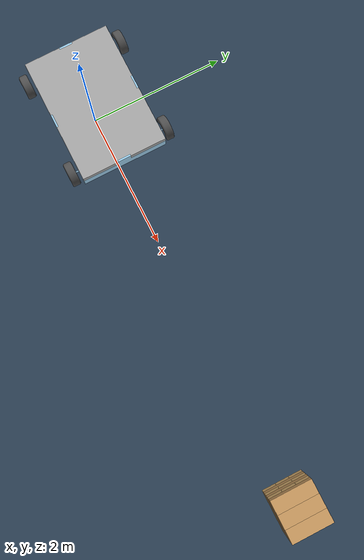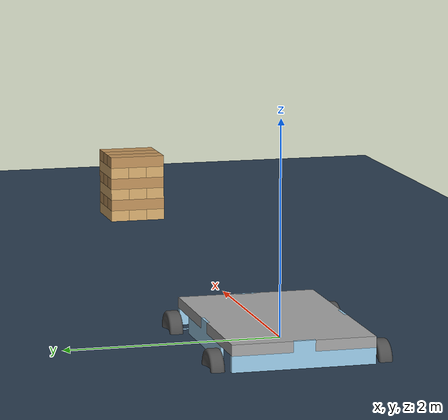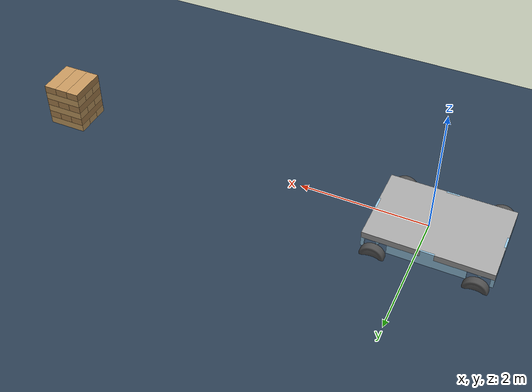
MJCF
<mujoco model="train_scene_nav">
  <include file="robot.xml"/>
  <visual>
    <global offwidth="1280" offheight="720"/>
    <headlight diffuse="0.6 0.6 0.6" ambient="0.3 0.3 0.3"/>
  </visual>
  <asset>
    <texture name="grid" type="2d" builtin="checker" rgb1="0.2 0.3 0.4" rgb2="0.12 0.17 0.23"
             width="512" height="512"/>
    <material name="grid" texture="grid" texrepeat="12 12" reflectance="0.1"/>
    <material name="wall_mat" rgba="0.35 0.38 0.45 1"/>
    <material name="obs_mat" rgba="0.75 0.45 0.2 1"/>
    <material name="wood_a" rgba="0.86 0.69 0.44 1"/>
    <material name="wood_b" rgba="0.76 0.58 0.36 1"/>
  </asset>

  <worldbody>
    <light pos="0 0 10" dir="0 0 -1" diffuse="0.8 0.8 0.8"/>
    <geom name="floor" type="plane" size="60 60 0.1" material="grid"/>

    <!-- ===== 4 STATIC WALLS: 30x30 m cage (interior half-size 15 m) =====
         group 5 (LIDAR-sensed); static => mj_ray needs flg_static=1. Height 1 m, thickness 0.2 m. -->
    <geom name="wall_n" type="box" material="wall_mat" group="5" pos="0  15.1 0.5" size="15.2 0.1 0.5"/>
    <geom name="wall_s" type="box" material="wall_mat" group="5" pos="0 -15.1 0.5" size="15.2 0.1 0.5"/>
    <geom name="wall_e" type="box" material="wall_mat" group="5" pos=" 15.1 0 0.5" size="0.1 15.2 0.5"/>
    <geom name="wall_w" type="box" material="wall_mat" group="5" pos="-15.1 0 0.5" size="0.1 15.2 0.5"/>

    <!-- goal = JENGA TOWER (mocap[0]): group 0 (LIDAR ignores the goal), all blocks non-colliding.
         Visual goal marker only — shape is NOT in the observation. 6 layers of 3 blocks, alternating. -->
    <body name="target" pos="6 0 0.02" mocap="true">
      <geom type="box" size="0.3 0.1 0.06" pos="0 -0.2 0.06" material="wood_a" contype="0" conaffinity="0"/>
      <geom type="box" size="0.3 0.1 0.06" pos="0  0.0 0.06" material="wood_a" contype="0" conaffinity="0"/>
      <geom type="box" size="0.3 0.1 0.06" pos="0  0.2 0.06" material="wood_a" contype="0" conaffinity="0"/>
      <geom type="box" size="0.1 0.3 0.06" pos="-0.2 0 0.18" material="wood_b" contype="0" conaffinity="0"/>
      <geom type="box" size="0.1 0.3 0.06" pos=" 0.0 0 0.18" material="wood_b" contype="0" conaffinity="0"/>
      <geom type="box" size="0.1 0.3 0.06" pos=" 0.2 0 0.18" material="wood_b" contype="0" conaffinity="0"/>
      <geom type="box" size="0.3 0.1 0.06" pos="0 -0.2 0.30" material="wood_a" contype="0" conaffinity="0"/>
      <geom type="box" size="0.3 0.1 0.06" pos="0  0.0 0.30" material="wood_a" contype="0" conaffinity="0"/>
      <geom type="box" size="0.3 0.1 0.06" pos="0  0.2 0.30" material="wood_a" contype="0" conaffinity="0"/>
      <geom type="box" size="0.1 0.3 0.06" pos="-0.2 0 0.42" material="wood_b" contype="0" conaffinity="0"/>
      <geom type="box" size="0.1 0.3 0.06" pos=" 0.0 0 0.42" material="wood_b" contype="0" conaffinity="0"/>
      <geom type="box" size="0.1 0.3 0.06" pos=" 0.2 0 0.42" material="wood_b" contype="0" conaffinity="0"/>
      <geom type="box" size="0.3 0.1 0.06" pos="0 -0.2 0.54" material="wood_a" contype="0" conaffinity="0"/>
      <geom type="box" size="0.3 0.1 0.06" pos="0  0.0 0.54" material="wood_a" contype="0" conaffinity="0"/>
      <geom type="box" size="0.3 0.1 0.06" pos="0  0.2 0.54" material="wood_a" contype="0" conaffinity="0"/>
      <geom type="box" size="0.1 0.3 0.06" pos="-0.2 0 0.66" material="wood_b" contype="0" conaffinity="0"/>
      <geom type="box" size="0.1 0.3 0.06" pos=" 0.0 0 0.66" material="wood_b" contype="0" conaffinity="0"/>
      <geom type="box" size="0.1 0.3 0.06" pos=" 0.2 0 0.66" material="wood_b" contype="0" conaffinity="0"/>
    </body>

    <!-- up to 4 obstacles (mocap[1..4]): solid + group 5, box half 0.3, z=0.5 (bottom on floor).
         The env activates n_obstacles and parks the rest far away. -->
    <body name="obs1" pos="3  1 0.5" mocap="true"><geom name="obs1_g" type="box" size="0.3 0.3 0.5" group="5" material="obs_mat"/></body>
    <body name="obs2" pos="3 -1 0.5" mocap="true"><geom name="obs2_g" type="box" size="0.3 0.3 0.5" group="5" material="obs_mat"/></body>
    <body name="obs3" pos="4  0 0.5" mocap="true"><geom name="obs3_g" type="box" size="0.3 0.3 0.5" group="5" material="obs_mat"/></body>
    <body name="obs4" pos="5  1 0.5" mocap="true"><geom name="obs4_g" type="box" size="0.3 0.3 0.5" group="5" material="obs_mat"/></body>
  </worldbody>
</mujoco>

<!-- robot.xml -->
<!-- Generated using onshape-to-robot -->
<!-- Onshape https://cad.onshape.com/documents/cf51a70103db432769543c51/w/7e018cacb15a911b2256f57c/e/bcb27ac4664ef37f7c51214e -->
<mujoco model="my_robot">
  <compiler angle="radian" meshdir="assets" autolimits="true"/>
  <default>
    <default class="my_robot">
      <joint frictionloss="0.1" armature="0.005"/>
      <position kp="50" dampratio="1"/>
      <default class="visual">
        <geom type="mesh" contype="0" conaffinity="0" group="2"/>
      </default>
      <default class="collision">
        <!-- overdamped contact (dampratio 2 = no bounce) + high friction for grip -->
        <geom group="3" condim="3" friction="1.4 0.01 0.001" solref="0.02 1"/>
      </default>
    </default>
  </default>
  <worldbody>
    <!-- Link part_1 -->
    <body name="part_1" pos="0 0 0" quat="1 0 0 0" childclass="my_robot">
      <freejoint name="part_1_freejoint"/>
      <inertial pos="-0.199094 0.105186 0.0371702" mass="30.0" fullinertia="5.99 11.65 15.97 0.00495 -0.0971 0.0000285"/>
      <!-- Part part_1 -->
      <geom type="mesh" class="visual" pos="-0.175807 0.105186 -0.165337" quat="0.707104 0.00203775 -0.00203775 -0.707104" mesh="part_1" material="part_1_material"/>
      <geom type="mesh" class="collision" pos="-0.175807 0.105186 -0.165337" quat="0.707104 0.00203775 -0.00203775 -0.707104" mesh="part_1" material="part_1_material"/>
      <!-- Part part_2 -->
      <geom type="mesh" class="visual" pos="-0.175807 0.105186 -0.165337" quat="0.707104 0.00203775 -0.00203775 -0.707104" mesh="part_2" material="part_2_material"/>
      <geom type="mesh" class="collision" pos="-0.175807 0.105186 -0.165337" quat="0.707104 0.00203775 -0.00203775 -0.707104" mesh="part_2" material="part_2_material"/>
      <site name="lidar" pos="-0.178 0.105 0.42" size="0.03" rgba="1 0.2 0.2 1" group="4"/>
      <!-- MANUAL: forward-facing camera mount (front edge, looks +x = driving direction).
           Wired into the observation in the camera round. -->
      <camera name="robot_cam" mode="fixed" pos="0.70 0.105 0.14" xyaxes="0 -1 0 0 0 1" fovy="70"/>
      <!-- Link rim -->
      <body name="rim" pos="0.558316 0.895186 -0.0111037" quat="0.707104 0.707104 -0.00203775 0.00203775">
        <!-- Joint from part_1 to rim -->
        <joint axis="0 0 1" name="wheel_fl"/>
        <inertial pos="0 -0 0.0323512" mass="0.875" fullinertia="0.006697 0.006697 0.011573 -0 0 0"/>
        <!-- Part rim -->
        <geom type="mesh" class="visual" pos="0 -0 0.0659467" quat="0.707107 0.707107 -0 -0" mesh="rim" material="rim_material"/>
        <geom type="cylinder" class="collision" pos="0 0 0.0659467" size="0.184 0.0615"/>
      </body>
      <!-- Link rim_2 -->
      <body name="rim_2" pos="-0.91166 -0.684814 -0.0195762" quat="0.698401 -0.698401 -0.110616 -0.110616">
        <!-- Joint from part_1 to rim_2 -->
        <joint axis="0 0 1" name="wheel_rr"/>
        <inertial pos="-0 0 0.0323512" mass="0.875" fullinertia="0.006697 0.006697 0.011573 -0 0 0"/>
        <!-- Part rim_2 -->
        <geom type="mesh" class="visual" pos="-0 0 0.0659467" quat="0.707107 0.707107 -0 0" mesh="rim" material="rim_material"/>
        <geom type="cylinder" class="collision" pos="0 0 0.0659467" size="0.184 0.0615"/>
      </body>
      <!-- Link rim_3 -->
      <body name="rim_3" pos="-0.91166 0.895186 -0.0195762" quat="0.707104 0.707104 -0.00203775 0.00203775">
        <!-- Joint from part_1 to rim_3 -->
        <joint axis="0 0 1" name="wheel_rl"/>
        <inertial pos="0 -0 0.0323512" mass="0.875" fullinertia="0.006697 0.006697 0.011573 0 0 -0"/>
        <!-- Part rim_3 -->
        <geom type="mesh" class="visual" pos="0 -0 0.0659467" quat="0.687091 0.687091 -0.167052 -0.167052" mesh="rim" material="rim_material"/>
        <geom type="cylinder" class="collision" pos="0 0 0.0659467" size="0.184 0.0615"/>
      </body>
      <!-- Link rim_4 -->
      <body name="rim_4" pos="0.558316 -0.684814 -0.0111037" quat="0.707104 -0.707104 -0.00203775 -0.00203775">
        <!-- Joint from part_1 to rim_4 -->
        <joint axis="0 0 1" name="wheel_fr"/>
        <inertial pos="-0 0 0.0323512" mass="0.875" fullinertia="0.006697 0.006697 0.011573 0 -0 0"/>
        <!-- Part rim_4 -->
        <geom type="mesh" class="visual" pos="-0 0 0.0659467" quat="0.640518 0.640518 -0.299561 -0.299561" mesh="rim" material="rim_material"/>
        <geom type="cylinder" class="collision" pos="0 0 0.0659467" size="0.184 0.0615"/>
      </body>
    </body>
  </worldbody>
  <asset>
    <mesh file="part_2.stl"/>
    <mesh file="rim.stl"/>
    <mesh file="part_1.stl"/>
    <material name="part_1_material" rgba="0.615686 0.811765 0.929412 1"/>
    <material name="part_2_material" rgba="0.647059 0.647059 0.647059 1"/>
    <material name="rim_material" rgba="0.301961 0.301961 0.301961 1"/>
  </asset>
  <actuator>
    <velocity name="wheel_fl" joint="wheel_fl" kv="60" ctrlrange="-12 12" forcerange="-400 400"/>
    <velocity name="wheel_rr" joint="wheel_rr" kv="60" ctrlrange="-12 12" forcerange="-400 400"/>
    <velocity name="wheel_rl" joint="wheel_rl" kv="60" ctrlrange="-12 12" forcerange="-400 400"/>
    <velocity name="wheel_fr" joint="wheel_fr" kv="60" ctrlrange="-12 12" forcerange="-400 400"/>
  </actuator>
  <equality/>
</mujoco>
